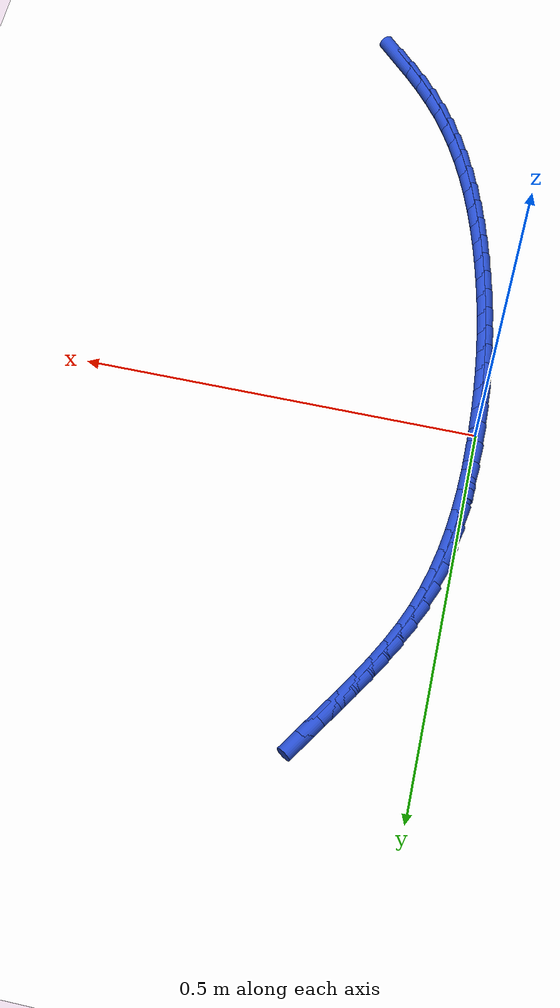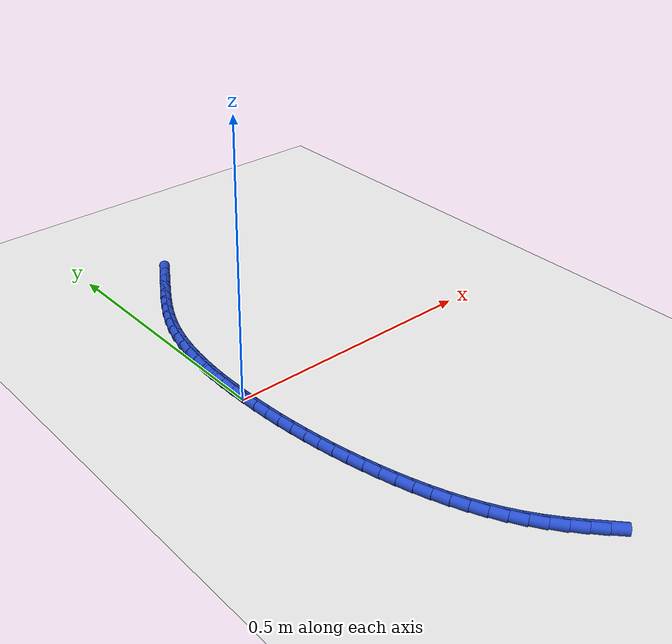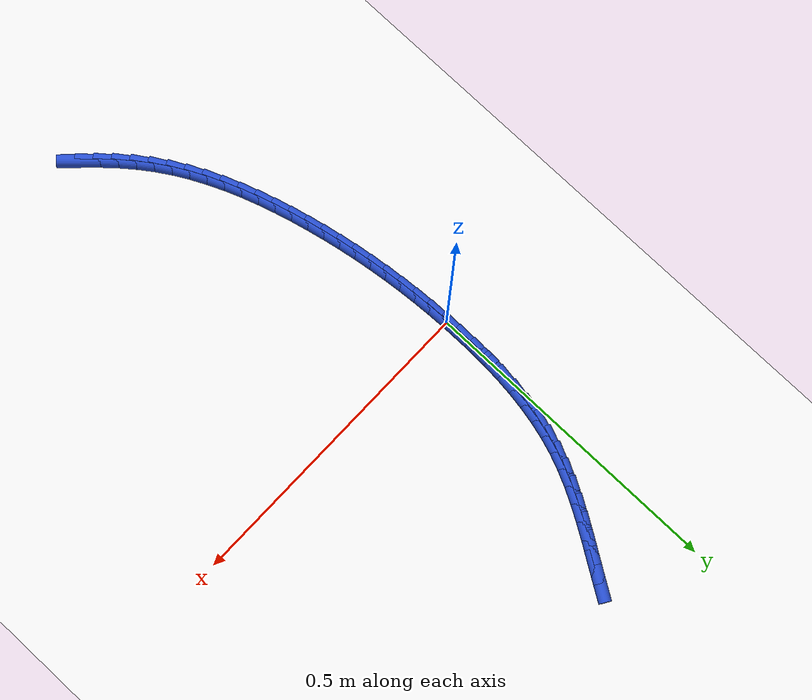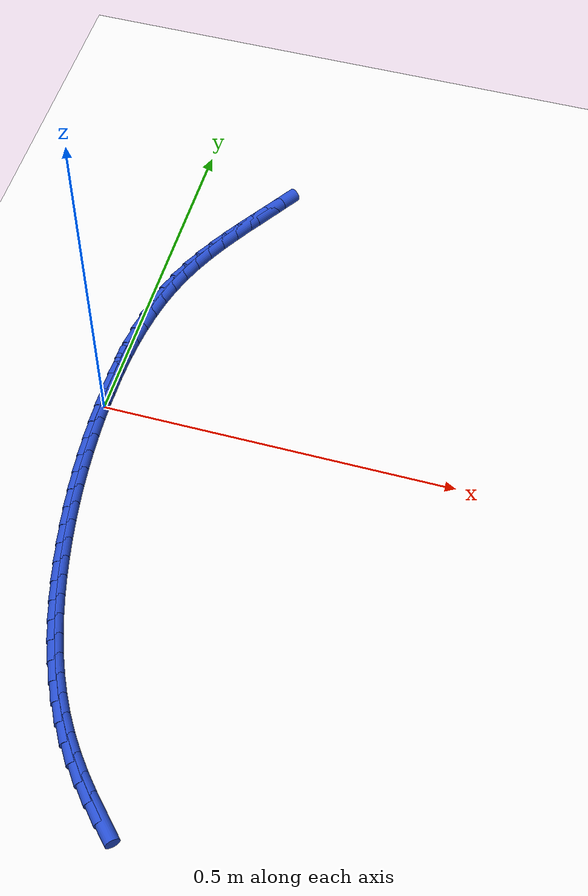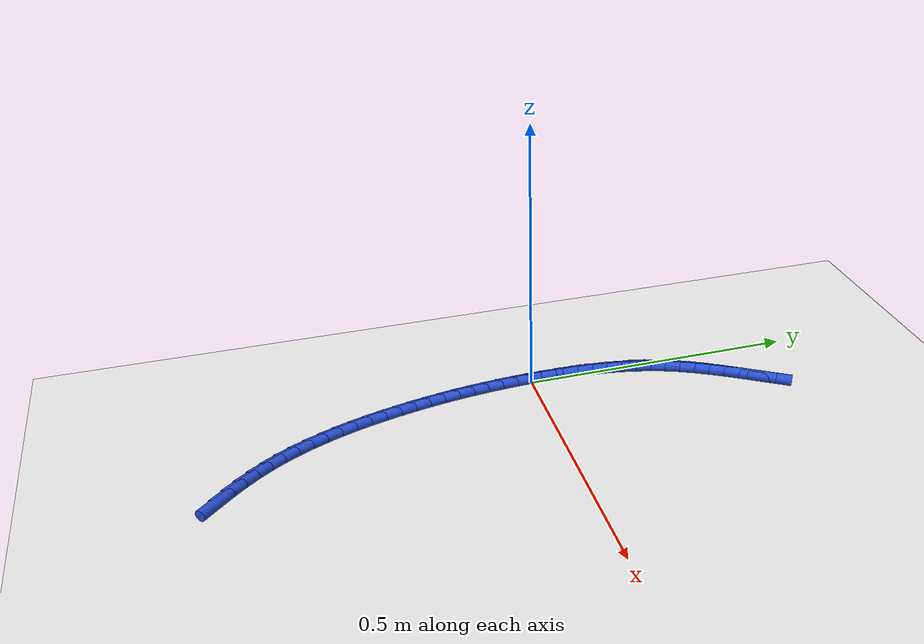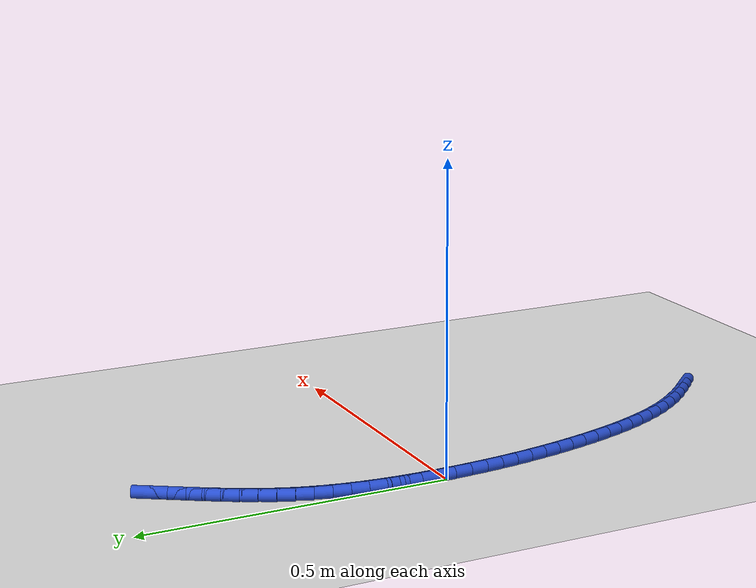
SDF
<sdf version="1.6">
 <world name="default">
  <model name="ground_plane">
   <static>1</static>
   <link name="link">
    <collision name="collision">
     <geometry><plane><normal>0 0 1</normal><size>100 100</size></plane></geometry>
     <surface><friction><ode><mu>100</mu><mu2>50</mu2></ode></friction></surface>
    </collision>
    <visual name="visual">
     <cast_shadows>0</cast_shadows>
     <geometry><plane><normal>0 0 1</normal><size>100 100</size></plane></geometry>
     <material>
      <script><uri>file://media/materials/scripts/gazebo.material</uri><name>Gazebo/WhiteGlow</name></script>
     </material>
    </visual>
   </link>
  </model>
  <model name="line">
   <link name="link_0">
    <pose>-6.938893903907228e-18 1.3877787807814457e-17 0.01 0 1.57 -1.5556264932809063</pose>
    <collision name="collision">
     <geometry><cylinder><radius>0.01</radius><length>0.08</length></cylinder></geometry>
    </collision>
    <visual name="visual">
     <material>
      <script><name>Gazebo/Blue</name><uri>file://media/materials/scripts/gazebo.material</uri></script>
     </material>
     <geometry><cylinder><radius>0.01</radius><length>0.08</length></cylinder></geometry>
    </visual>
   </link>
   <link name="link_1">
    <pose>-0.0004328668530601711 0.028532524620181948 0.01 0 1.57 1.5608192259742957</pose>
    <collision name="collision">
     <geometry><cylinder><radius>0.01</radius><length>0.08</length></cylinder></geometry>
    </collision>
    <visual name="visual">
     <material>
      <script><name>Gazebo/Blue</name><uri>file://media/materials/scripts/gazebo.material</uri></script>
     </material>
     <geometry><cylinder><radius>0.01</radius><length>0.08</length></cylinder></geometry>
    </visual>
   </link>
   <link name="link_2">
    <pose>-0.00014729697651953791 0.05715410579512215 0.01 0 1.57 1.5314724917271418</pose>
    <collision name="collision">
     <geometry><cylinder><radius>0.01</radius><length>0.08</length></cylinder></geometry>
    </collision>
    <visual name="visual">
     <material>
      <script><name>Gazebo/Blue</name><uri>file://media/materials/scripts/gazebo.material</uri></script>
     </material>
     <geometry><cylinder><radius>0.01</radius><length>0.08</length></cylinder></geometry>
    </visual>
   </link>
   <link name="link_3">
    <pose>0.000977937755280431 0.08575392731722464 0.01 0 1.57 1.4976454005490114</pose>
    <collision name="collision">
     <geometry><cylinder><radius>0.01</radius><length>0.08</length></cylinder></geometry>
    </collision>
    <visual name="visual">
     <material>
      <script><name>Gazebo/Blue</name><uri>file://media/materials/scripts/gazebo.material</uri></script>
     </material>
     <geometry><cylinder><radius>0.01</radius><length>0.08</length></cylinder></geometry>
    </visual>
   </link>
   <link name="link_4">
    <pose>0.0030640654679982694 0.11422117297889346 0.01 0 1.57 1.4590100040305665</pose>
    <collision name="collision">
     <geometry><cylinder><radius>0.01</radius><length>0.08</length></cylinder></geometry>
    </collision>
    <visual name="visual">
     <material>
      <script><name>Gazebo/Blue</name><uri>file://media/materials/scripts/gazebo.material</uri></script>
     </material>
     <geometry><cylinder><radius>0.01</radius><length>0.08</length></cylinder></geometry>
    </visual>
   </link>
   <link name="link_5">
    <pose>0.006232314287292515 0.1424450265725326 0.01 0 1.57 1.4152053866295176</pose>
    <collision name="collision">
     <geometry><cylinder><radius>0.01</radius><length>0.08</length></cylinder></geometry>
    </collision>
    <visual name="visual">
     <material>
      <script><name>Gazebo/Blue</name><uri>file://media/materials/scripts/gazebo.material</uri></script>
     </material>
     <geometry><cylinder><radius>0.01</radius><length>0.08</length></cylinder></geometry>
    </visual>
   </link>
   <link name="link_6">
    <pose>0.010603912338821696 0.170314671890546 0.01 0 1.57 1.3658598389447063</pose>
    <collision name="collision">
     <geometry><cylinder><radius>0.01</radius><length>0.08</length></cylinder></geometry>
    </collision>
    <visual name="visual">
     <material>
      <script><name>Gazebo/Blue</name><uri>file://media/materials/scripts/gazebo.material</uri></script>
     </material>
     <geometry><cylinder><radius>0.01</radius><length>0.08</length></cylinder></geometry>
    </visual>
   </link>
   <link name="link_7">
    <pose>0.016300087748244353 0.19771929272533761 0.01 0 1.57 1.3106241144694624</pose>
    <collision name="collision">
     <geometry><cylinder><radius>0.01</radius><length>0.08</length></cylinder></geometry>
    </collision>
    <visual name="visual">
     <material>
      <script><name>Gazebo/Blue</name><uri>file://media/materials/scripts/gazebo.material</uri></script>
     </material>
     <geometry><cylinder><radius>0.01</radius><length>0.08</length></cylinder></geometry>
    </visual>
   </link>
   <link name="link_8">
    <pose>0.023442068641219026 0.22454807286931164 0.01 0 1.57 1.2492200318941575</pose>
    <collision name="collision">
     <geometry><cylinder><radius>0.01</radius><length>0.08</length></cylinder></geometry>
    </collision>
    <visual name="visual">
     <material>
      <script><name>Gazebo/Blue</name><uri>file://media/materials/scripts/gazebo.material</uri></script>
     </material>
     <geometry><cylinder><radius>0.01</radius><length>0.08</length></cylinder></geometry>
    </visual>
   </link>
   <link name="link_9">
    <pose>0.03215105480468282 0.2506902155332027 0.01 0 1.57 1.184782731723996</pose>
    <collision name="collision">
     <geometry><cylinder><radius>0.01</radius><length>0.08</length></cylinder></geometry>
    </collision>
    <visual name="visual">
     <material>
      <script><name>Gazebo/Blue</name><uri>file://media/materials/scripts/gazebo.material</uri></script>
     </material>
     <geometry><cylinder><radius>0.01</radius><length>0.08</length></cylinder></geometry>
    </visual>
   </link>
   <link name="link_10">
    <pose>0.042472345266808854 0.27608693283851216 0.01 0 1.57 1.1280689015237728</pose>
    <collision name="collision">
     <geometry><cylinder><radius>0.01</radius><length>0.08</length></cylinder></geometry>
    </collision>
    <visual name="visual">
     <material>
      <script><name>Gazebo/Blue</name><uri>file://media/materials/scripts/gazebo.material</uri></script>
     </material>
     <geometry><cylinder><radius>0.01</radius><length>0.08</length></cylinder></geometry>
    </visual>
   </link>
   <link name="link_11">
    <pose>0.05421032883693355 0.30084451401899054 0.01 0 1.57 1.0816708709063352</pose>
    <collision name="collision">
     <geometry><cylinder><radius>0.01</radius><length>0.08</length></cylinder></geometry>
    </collision>
    <visual name="visual">
     <material>
      <script><name>Gazebo/Blue</name><uri>file://media/materials/scripts/gazebo.material</uri></script>
     </material>
     <geometry><cylinder><radius>0.01</radius><length>0.08</length></cylinder></geometry>
    </visual>
   </link>
   <link name="link_12">
    <pose>0.06712170715413104 0.3251019246323582 0.01 0 1.57 1.045786533843919</pose>
    <collision name="collision">
     <geometry><cylinder><radius>0.01</radius><length>0.08</length></cylinder></geometry>
    </collision>
    <visual name="visual">
     <material>
      <script><name>Gazebo/Blue</name><uri>file://media/materials/scripts/gazebo.material</uri></script>
     </material>
     <geometry><cylinder><radius>0.01</radius><length>0.08</length></cylinder></geometry>
    </visual>
   </link>
   <link name="link_13">
    <pose>0.08096318185747539 0.34899813023633497 0.01 0 1.57 1.0203776618018388</pose>
    <collision name="collision">
     <geometry><cylinder><radius>0.01</radius><length>0.08</length></cylinder></geometry>
    </collision>
    <visual name="visual">
     <material>
      <script><name>Gazebo/Blue</name><uri>file://media/materials/scripts/gazebo.material</uri></script>
     </material>
     <geometry><cylinder><radius>0.01</radius><length>0.08</length></cylinder></geometry>
    </visual>
   </link>
   <link name="link_14">
    <pose>0.09549145458604062 0.3726720963886408 0.01 0 1.57 1.0052895886531499</pose>
    <collision name="collision">
     <geometry><cylinder><radius>0.01</radius><length>0.08</length></cylinder></geometry>
    </collision>
    <visual name="visual">
     <material>
      <script><name>Gazebo/Blue</name><uri>file://media/materials/scripts/gazebo.material</uri></script>
     </material>
     <geometry><cylinder><radius>0.01</radius><length>0.08</length></cylinder></geometry>
    </visual>
   </link>
   <link name="link_15">
    <pose>0.11046322697890087 0.3962627886469958 0.01 0 1.57 1.0003352925455387</pose>
    <collision name="collision">
     <geometry><cylinder><radius>0.01</radius><length>0.08</length></cylinder></geometry>
    </collision>
    <visual name="visual">
     <material>
      <script><name>Gazebo/Blue</name><uri>file://media/materials/scripts/gazebo.material</uri></script>
     </material>
     <geometry><cylinder><radius>0.01</radius><length>0.08</length></cylinder></geometry>
    </visual>
   </link>
   <link name="link_16">
    <pose>0.1256352006751302 0.41990917256912 0.01 0 1.57 1.0053427853454664</pose>
    <collision name="collision">
     <geometry><cylinder><radius>0.01</radius><length>0.08</length></cylinder></geometry>
    </collision>
    <visual name="visual">
     <material>
      <script><name>Gazebo/Blue</name><uri>file://media/materials/scripts/gazebo.material</uri></script>
     </material>
     <geometry><cylinder><radius>0.01</radius><length>0.08</length></cylinder></geometry>
    </visual>
   </link>
   <link name="link_228">
    <pose>0.1968503458431575 -0.570311135833649 0.01 0 1.57 -0.8102051175692252</pose>
    <collision name="collision">
     <geometry><cylinder><radius>0.01</radius><length>0.08</length></cylinder></geometry>
    </collision>
    <visual name="visual">
     <material>
      <script><name>Gazebo/Blue</name><uri>file://media/materials/scripts/gazebo.material</uri></script>
     </material>
     <geometry><cylinder><radius>0.01</radius><length>0.08</length></cylinder></geometry>
    </visual>
   </link>
   <link name="link_229">
    <pose>0.1776812959655166 -0.55016663644038 0.01 0 1.57 -0.8499890584960416</pose>
    <collision name="collision">
     <geometry><cylinder><radius>0.01</radius><length>0.08</length></cylinder></geometry>
    </collision>
    <visual name="visual">
     <material>
      <script><name>Gazebo/Blue</name><uri>file://media/materials/scripts/gazebo.material</uri></script>
     </material>
     <geometry><cylinder><radius>0.01</radius><length>0.08</length></cylinder></geometry>
    </visual>
   </link>
   <link name="link_230">
    <pose>0.15940616576642025 -0.5293639169530158 0.01 0 1.57 -0.8964438769152518</pose>
    <collision name="collision">
     <geometry><cylinder><radius>0.01</radius><length>0.08</length></cylinder></geometry>
    </collision>
    <visual name="visual">
     <material>
      <script><name>Gazebo/Blue</name><uri>file://media/materials/scripts/gazebo.material</uri></script>
     </material>
     <geometry><cylinder><radius>0.01</radius><length>0.08</length></cylinder></geometry>
    </visual>
   </link>
   <link name="link_231">
    <pose>0.14215935499946813 -0.5077882257509635 0.01 0 1.57 -0.9494041862551169</pose>
    <collision name="collision">
     <geometry><cylinder><radius>0.01</radius><length>0.08</length></cylinder></geometry>
    </collision>
    <visual name="visual">
     <material>
      <script><name>Gazebo/Blue</name><uri>file://media/materials/scripts/gazebo.material</uri></script>
     </material>
     <geometry><cylinder><radius>0.01</radius><length>0.08</length></cylinder></geometry>
    </visual>
   </link>
   <link name="link_232">
    <pose>0.12607526341826003 -0.48532481121363064 0.01 0 1.57 -1.0074232096072326</pose>
    <collision name="collision">
     <geometry><cylinder><radius>0.01</radius><length>0.08</length></cylinder></geometry>
    </collision>
    <visual name="visual">
     <material>
      <script><name>Gazebo/Blue</name><uri>file://media/materials/scripts/gazebo.material</uri></script>
     </material>
     <geometry><cylinder><radius>0.01</radius><length>0.08</length></cylinder></geometry>
    </visual>
   </link>
   <link name="link_233">
    <pose>0.11126745737611206 -0.46188207057278335 0.01 0 1.57 -1.063218951777944</pose>
    <collision name="collision">
     <geometry><cylinder><radius>0.01</radius><length>0.08</length></cylinder></geometry>
    </collision>
    <visual name="visual">
     <material>
      <script><name>Gazebo/Blue</name><uri>file://media/materials/scripts/gazebo.material</uri></script>
     </material>
     <geometry><cylinder><radius>0.01</radius><length>0.08</length></cylinder></geometry>
    </visual>
   </link>
   <link name="link_234">
    <pose>0.09771593241199401 -0.43751681711415313 0.01 0 1.57 -1.1141077953654883</pose>
    <collision name="collision">
     <geometry><cylinder><radius>0.01</radius><length>0.08</length></cylinder></geometry>
    </collision>
    <visual name="visual">
     <material>
      <script><name>Gazebo/Blue</name><uri>file://media/materials/scripts/gazebo.material</uri></script>
     </material>
     <geometry><cylinder><radius>0.01</radius><length>0.08</length></cylinder></geometry>
    </visual>
   </link>
   <link name="link_235">
    <pose>0.08534796173552445 -0.4123444460832838 0.01 0 1.57 -1.160276366341051</pose>
    <collision name="collision">
     <geometry><cylinder><radius>0.01</radius><length>0.08</length></cylinder></geometry>
    </collision>
    <visual name="visual">
     <material>
      <script><name>Gazebo/Blue</name><uri>file://media/materials/scripts/gazebo.material</uri></script>
     </material>
     <geometry><cylinder><radius>0.01</radius><length>0.08</length></cylinder></geometry>
    </visual>
   </link>
   <link name="link_236">
    <pose>0.07409068965805073 -0.38648049594991724 0.01 0 1.57 -1.201969512722408</pose>
    <collision name="collision">
     <geometry><cylinder><radius>0.01</radius><length>0.08</length></cylinder></geometry>
    </collision>
    <visual name="visual">
     <material>
      <script><name>Gazebo/Blue</name><uri>file://media/materials/scripts/gazebo.material</uri></script>
     </material>
     <geometry><cylinder><radius>0.01</radius><length>0.08</length></cylinder></geometry>
    </visual>
   </link>
   <link name="link_237">
    <pose>0.06387126049092012 -0.36004050518379527 0.01 0 1.57 -1.239454336492337</pose>
    <collision name="collision">
     <geometry><cylinder><radius>0.01</radius><length>0.08</length></cylinder></geometry>
    </collision>
    <visual name="visual">
     <material>
      <script><name>Gazebo/Blue</name><uri>file://media/materials/scripts/gazebo.material</uri></script>
     </material>
     <geometry><cylinder><radius>0.01</radius><length>0.08</length></cylinder></geometry>
    </visual>
   </link>
   <link name="link_238">
    <pose>0.05461681854547998 -0.33314001225465995 0.01 0 1.57 -1.2729985379164785</pose>
    <collision name="collision">
     <geometry><cylinder><radius>0.01</radius><length>0.08</length></cylinder></geometry>
    </collision>
    <visual name="visual">
     <material>
      <script><name>Gazebo/Blue</name><uri>file://media/materials/scripts/gazebo.material</uri></script>
     </material>
     <geometry><cylinder><radius>0.01</radius><length>0.08</length></cylinder></geometry>
    </visual>
   </link>
   <link name="link_239">
    <pose>0.046254508133077625 -0.3058945556322533 0.01 0 1.57 -1.3028550997095227</pose>
    <collision name="collision">
     <geometry><cylinder><radius>0.01</radius><length>0.08</length></cylinder></geometry>
    </collision>
    <visual name="visual">
     <material>
      <script><name>Gazebo/Blue</name><uri>file://media/materials/scripts/gazebo.material</uri></script>
     </material>
     <geometry><cylinder><radius>0.01</radius><length>0.08</length></cylinder></geometry>
    </visual>
   </link>
   <link name="link_240">
    <pose>0.03871147356506058 -0.27841967378631816 0.01 0 1.57 -1.329251753036996</pose>
    <collision name="collision">
     <geometry><cylinder><radius>0.01</radius><length>0.08</length></cylinder></geometry>
    </collision>
    <visual name="visual">
     <material>
      <script><name>Gazebo/Blue</name><uri>file://media/materials/scripts/gazebo.material</uri></script>
     </material>
     <geometry><cylinder><radius>0.01</radius><length>0.08</length></cylinder></geometry>
    </visual>
   </link>
   <link name="link_241">
    <pose>0.03191485915277571 -0.25083090518659457 0.01 0 1.57 -1.3528164874972912</pose>
    <collision name="collision">
     <geometry><cylinder><radius>0.01</radius><length>0.08</length></cylinder></geometry>
    </collision>
    <visual name="visual">
     <material>
      <script><name>Gazebo/Blue</name><uri>file://media/materials/scripts/gazebo.material</uri></script>
     </material>
     <geometry><cylinder><radius>0.01</radius><length>0.08</length></cylinder></geometry>
    </visual>
   </link>
   <link name="link_242">
    <pose>0.025800303476739665 -0.22322558752294006 0.01 0 1.57 -1.3758164989951052</pose>
    <collision name="collision">
     <geometry><cylinder><radius>0.01</radius><length>0.08</length></cylinder></geometry>
    </collision>
    <visual name="visual">
     <material>
      <script><name>Gazebo/Blue</name><uri>file://media/materials/scripts/gazebo.material</uri></script>
     </material>
     <geometry><cylinder><radius>0.01</radius><length>0.08</length></cylinder></geometry>
    </visual>
   </link>
   <link name="link_243">
    <pose>0.020346357209612618 -0.19560911019301633 0.01 0 1.57 -1.3988737427028999</pose>
    <collision name="collision">
     <geometry><cylinder><radius>0.01</radius><length>0.08</length></cylinder></geometry>
    </collision>
    <visual name="visual">
     <material>
      <script><name>Gazebo/Blue</name><uri>file://media/materials/scripts/gazebo.material</uri></script>
     </material>
     <geometry><cylinder><radius>0.01</radius><length>0.08</length></cylinder></geometry>
    </visual>
   </link>
   <link name="link_244">
    <pose>0.015545090833922505 -0.16795789352385682 0.01 0 1.57 -1.4219035916507596</pose>
    <collision name="collision">
     <geometry><cylinder><radius>0.01</radius><length>0.08</length></cylinder></geometry>
    </collision>
    <visual name="visual">
     <material>
      <script><name>Gazebo/Blue</name><uri>file://media/materials/scripts/gazebo.material</uri></script>
     </material>
     <geometry><cylinder><radius>0.01</radius><length>0.08</length></cylinder></geometry>
    </visual>
   </link>
   <link name="link_245">
    <pose>0.011388579880027222 -0.14024834702644462 0.01 0 1.57 -1.4448209178720715</pose>
    <collision name="collision">
     <geometry><cylinder><radius>0.01</radius><length>0.08</length></cylinder></geometry>
    </collision>
    <visual name="visual">
     <material>
      <script><name>Gazebo/Blue</name><uri>file://media/materials/scripts/gazebo.material</uri></script>
     </material>
     <geometry><cylinder><radius>0.01</radius><length>0.08</length></cylinder></geometry>
    </visual>
   </link>
   <link name="link_246">
    <pose>0.007868899878284678 -0.11245688021176273 0.01 0 1.57 -1.4675416696651626</pose>
    <collision name="collision">
     <geometry><cylinder><radius>0.01</radius><length>0.08</length></cylinder></geometry>
    </collision>
    <visual name="visual">
     <material>
      <script><name>Gazebo/Blue</name><uri>file://media/materials/scripts/gazebo.material</uri></script>
     </material>
     <geometry><cylinder><radius>0.01</radius><length>0.08</length></cylinder></geometry>
    </visual>
   </link>
   <link name="link_247">
    <pose>0.00497812635905278 -0.08455990259079428 0.01 0 1.57 -1.4899841546143142</pose>
    <collision name="collision">
     <geometry><cylinder><radius>0.01</radius><length>0.08</length></cylinder></geometry>
    </collision>
    <visual name="visual">
     <material>
      <script><name>Gazebo/Blue</name><uri>file://media/materials/scripts/gazebo.material</uri></script>
     </material>
     <geometry><cylinder><radius>0.01</radius><length>0.08</length></cylinder></geometry>
    </visual>
   </link>
   <link name="link_248">
    <pose>0.0027083348526894305 -0.05653382367452232 0.01 0 1.57 -1.512070238739211</pose>
    <collision name="collision">
     <geometry><cylinder><radius>0.01</radius><length>0.08</length></cylinder></geometry>
    </collision>
    <visual name="visual">
     <material>
      <script><name>Gazebo/Blue</name><uri>file://media/materials/scripts/gazebo.material</uri></script>
     </material>
     <geometry><cylinder><radius>0.01</radius><length>0.08</length></cylinder></geometry>
    </visual>
   </link>
   <link name="link_249">
    <pose>0.0010516008895525353 -0.028355052973929873 0.01 0 1.57 -1.5337264207430672</pose>
    <collision name="collision">
     <geometry><cylinder><radius>0.01</radius><length>0.08</length></cylinder></geometry>
    </collision>
    <visual name="visual">
     <material>
      <script><name>Gazebo/Blue</name><uri>file://media/materials/scripts/gazebo.material</uri></script>
     </material>
     <geometry><cylinder><radius>0.01</radius><length>0.08</length></cylinder></geometry>
    </visual>
   </link>
   <link name="link_250">
    <pose>-1.951563910473908e-18 -7.632783294297951e-17 0.01 0 1.57 -1.5548847484657062</pose>
    <collision name="collision">
     <geometry><cylinder><radius>0.01</radius><length>0.08</length></cylinder></geometry>
    </collision>
    <visual name="visual">
     <material>
      <script><name>Gazebo/Blue</name><uri>file://media/materials/scripts/gazebo.material</uri></script>
     </material>
     <geometry><cylinder><radius>0.01</radius><length>0.08</length></cylinder></geometry>
    </visual>
   </link>
   <link name="link_251">
    <pose>-0.0004543922856102729 0.028554925736284 0.01 0 1.57 1.5661090991365414</pose>
    <collision name="collision">
     <geometry><cylinder><radius>0.01</radius><length>0.08</length></cylinder></geometry>
    </collision>
    <visual name="visual">
     <material>
      <script><name>Gazebo/Blue</name><uri>file://media/materials/scripts/gazebo.material</uri></script>
     </material>
     <geometry><cylinder><radius>0.01</radius><length>0.08</length></cylinder></geometry>
    </visual>
   </link>
   <link name="link_252">
    <pose>-0.0003195004369203739 0.05733331472393932 0.01 0 1.57 -1.5652237006319216</pose>
    <collision name="collision">
     <geometry><cylinder><radius>0.01</radius><length>0.08</length></cylinder></geometry>
    </collision>
    <visual name="visual">
     <material>
      <script><name>Gazebo/Blue</name><uri>file://media/materials/scripts/gazebo.material</uri></script>
     </material>
     <geometry><cylinder><radius>0.01</radius><length>0.08</length></cylinder></geometry>
    </visual>
   </link>
  </model>
 </world>
</sdf>
